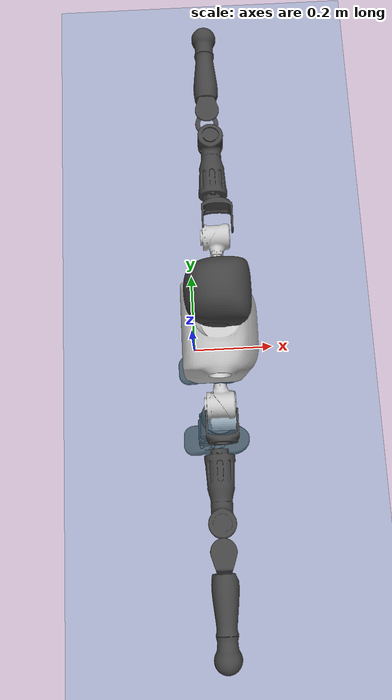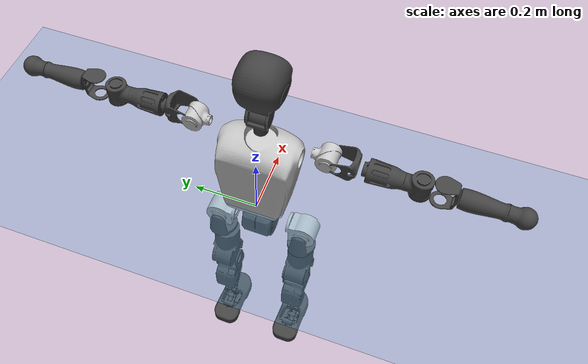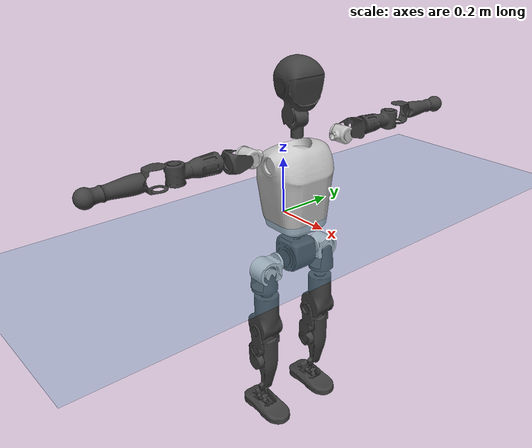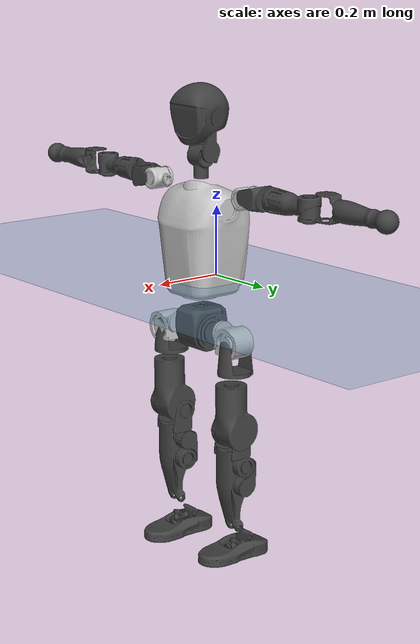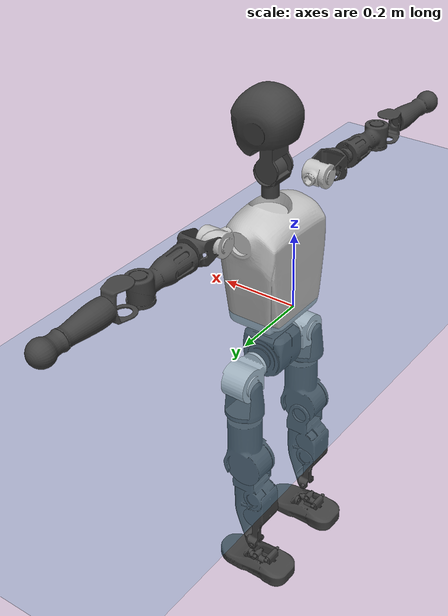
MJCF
<mujoco model="T1">
  <compiler angle="radian" assetdir="assets" balanceinertia="true" inertiafromgeom="false"/>

  <option timestep="0.005" density="1.2" viscosity="2e-05"/>

  <size nkey="1"/>

  <visual>
    <quality shadowsize="8192"/>
    <map shadowclip="0.5"/>
  </visual>

  <default>
    <default class="/">
      <joint armature="0.01" damping="0.01" frictionloss="0.1"/>
      <geom contype="0" conaffinity="0" group="1" solref="-1000 -80"/>
      <site size="0.01 0.005 0.005" group="5"/>
      <general forcelimited="true" biastype="affine" gainprm="25" biasprm="0 -25 -0.6"/>
      <default class="t1">
        <geom rgba="0.25 0.25 0.25 1"/>
        <default class="visual">
          <geom type="mesh" group="2"/>
        </default>
        <default class="collision">
          <geom group="3"/>
        </default>
        <default class="foot">
          <geom size="0.1115 0.05 0.015" type="box" condim="6" group="4" priority="1" solimp="0.015 1 0.015"/>
        </default>
        <default class="reward_collision_sphere">
          <geom group="5" rgba="1 0 0 1"/>
        </default>
      </default>
    </default>
  </default>

  <asset>
    <texture type="skybox" colorspace="auto" name="//unnamed_texture_0" builtin="gradient" rgb1="0.95 0.95 0.95" rgb2="0.95 0.95 0.95" width="100" height="600"/>
    <texture type="2d" colorspace="auto" name="texplane" builtin="checker" rgb1="0.345 0.575 0.748" rgb2="0.345 0.575 0.748" markrgb="1 1 1" width="512" height="512"/>
    <material name="MatPlane" class="/" texture="texplane" texuniform="true" texrepeat="2 2" specular="0.9"/>
    <mesh name="Trunk" class="/" file="Trunk.stl"/>
    <mesh name="H1" class="/" file="H1.stl"/>
    <mesh name="H2" class="/" file="H2.stl"/>
    <mesh name="AL1" class="/" file="AL1.stl"/>
    <mesh name="AL2" class="/" file="AL2.stl"/>
    <mesh name="AL3" class="/" file="AL3.stl"/>
    <mesh name="left_hand_link" class="/" file="left_hand_link.stl"/>
    <mesh name="AR1" class="/" file="AR1.stl"/>
    <mesh name="AR2" class="/" file="AR2.stl"/>
    <mesh name="AR3" class="/" file="AR3.stl"/>
    <mesh name="right_hand_link" class="/" file="right_hand_link.stl"/>
    <mesh name="Waist" class="/" file="Waist.stl"/>
    <mesh name="Hip_Pitch_Left" class="/" file="Hip_Pitch_Left.stl"/>
    <mesh name="Hip_Roll_Left" class="/" file="Hip_Roll_Left.stl"/>
    <mesh name="Hip_Yaw_Left" class="/" file="Hip_Yaw_Left.stl"/>
    <mesh name="Shank_Left" class="/" file="Shank_Left.stl"/>
    <mesh name="Ankle_Cross_Left" class="/" file="Ankle_Cross_Left.stl"/>
    <mesh name="left_foot_link" class="/" file="left_foot_link.stl"/>
    <mesh name="Hip_Pitch_Right" class="/" file="Hip_Pitch_Right.stl"/>
    <mesh name="Hip_Roll_Right" class="/" file="Hip_Roll_Right.stl"/>
    <mesh name="Hip_Yaw_Right" class="/" file="Hip_Yaw_Right.stl"/>
    <mesh name="Shank_Right" class="/" file="Shank_Right.stl"/>
    <mesh name="Ankle_Cross_Right" class="/" file="Ankle_Cross_Right.stl"/>
    <mesh name="right_foot_link" class="/" file="right_foot_link.stl"/>
  </asset>

  <worldbody>
    <geom name="floor" class="/" size="100 100 0.125" type="plane" group="0" material="MatPlane"/>
    <light name="toplight_shadow" class="/" pos="0 0 5" dir="0.0990148 0.0990148 -0.990148" type="directional" ambient="0.04 0.04 0.04" diffuse="0.55 0.55 0.55" specular="0.12 0.12 0.12"/>
    <light name="toplight_fill" class="/" pos="0 0 5" dir="0.0990148 0.0990148 -0.990148" type="directional" castshadow="false" ambient="0.04 0.04 0.04" diffuse="0.3 0.3 0.3" specular="0.08 0.08 0.08"/>
    <body name="trunk" childclass="t1" pos="0.00480243 0.00937906 -0.00621373" quat="0.999994 0.00178234 -0.000518895 -0.00280525">
      <inertial pos="0.0517638 0.003144 0.121628" quat="0.999924 0.00433022 -0.0103293 0.00517168" mass="20.8137" diaginertia="0.0691731 0.325471 0.134131"/>
      <joint name="//unnamed_joint_0" type="free" armature="0" damping="0" frictionloss="0"/>
      <geom name="//unnamed_geom_1" class="visual" rgba="0.76 0.76 0.76 1" mesh="Trunk"/>
      <geom name="//unnamed_geom_2" class="collision" size="0.0890753 0.118767 0.178151" pos="0.0576599 0 0.144712" type="box"/>
      <geom name="//unnamed_geom_3" class="reward_collision_sphere" size="0.136582" pos="0.0576599 0 0.120593"/>
      <geom name="//unnamed_geom_4" class="reward_collision_sphere" size="0.0178151" pos="0.0576599 0.118667 0"/>
      <geom name="//unnamed_geom_5" class="reward_collision_sphere" size="0.0178151" pos="0.0576599 -0.118667 0"/>
      <geom name="//unnamed_geom_6" class="reward_collision_sphere" size="0.0178151" pos="0.0576599 0.149381 0.217068"/>
      <geom name="//unnamed_geom_7" class="reward_collision_sphere" size="0.0178151" pos="0.0576599 -0.149381 0.217068"/>
      <site name="imu" pos="0.0365871 0.0542194 0.00419633" size="0.0118767"/>
      <camera name="track" pos="0 -2.79216 0" quat="0.707107 0.707107 0 0" mode="trackcom"/>
      <camera name="ego_camera" pos="0.117242 0 0.506491" quat="-0.5 -0.5 0.5 0.5"/>
      <body name="H1" pos="0.057459 -0.000199073 0.291705" quat="0.999995 -0.0018944 -0.00214264 0.00105736">
        <inertial pos="-0.00671746 -0.00215768 0.0623402" quat="0.724158 0.00633655 -0.0196268 0.689326" mass="0.720113" diaginertia="0.000189302 0.00103635 0.000403269"/>
        <joint name="AAHead_yaw" pos="0 0 0" axis="0.0339857 0.0425395 0.998517" range="-1.41988 1.5527" armature="0.00771215" damping="0" frictionloss="0.167116"/>
        <geom name="//unnamed_geom_8" class="visual" mesh="H1"/>
        <body name="H2" pos="-0.0102438 0.000704431 0.0741785" quat="1 5.67173e-05 -2.72032e-05 -2.73945e-05">
          <inertial pos="0.00667811 0.0137396 0.117535" quat="0.989205 0.0975365 -0.0737871 -0.0807173" mass="1.18118" diaginertia="0.00187062 0.0132328 0.00481064"/>
          <joint name="Head_pitch" pos="0 0 0" axis="-0.0449404 -0.998957 0.00813426" stiffness="0.0244821" range="-1.1996 0.235214" armature="0.0110089" damping="0.00647246" frictionloss="0.144645"/>
          <geom name="//unnamed_geom_9" class="visual" mesh="H2"/>
          <geom name="//unnamed_geom_10" class="collision" size="0.0950136" pos="0.00960999 0 0.132652"/>
          <geom name="//unnamed_geom_11" class="reward_collision_sphere" size="0.10689" pos="0.01922 0 0.120593"/>
        </body>
      </body>
      <body name="AL1" pos="0.062828 0.154689 0.263001" quat="0.999999 0.00133676 0.000797676 0.000594035">
        <inertial pos="-0.00139817 0.059459 0.0121324" quat="0.541357 0.456271 -0.488965 0.509571" mass="0.732686" diaginertia="0.000914603 0.00566843 0.00062757"/>
        <joint name="Left_Shoulder_Pitch" pos="0 0 0" axis="0.00583764 0.998656 -0.0515021" range="-3.30666 1.31803" armature="0.0135869" damping="0.00449976" frictionloss="0.113776"/>
        <geom name="//unnamed_geom_12" class="visual" rgba="0.76 0.76 0.76 1" mesh="AL1"/>
        <body name="AL2" pos="0.00494676 0.0744102 0.00980718" quat="0.999976 -0.00659062 0.0018678 -0.00126189">
          <inertial pos="0.00707084 0.0662867 0.000404898" quat="0.489999 0.51022 -0.487766 0.511527" mass="0.27588" diaginertia="0.000321245 0.00202298 0.000461715"/>
          <joint name="Left_Shoulder_Roll" pos="0 0 0" axis="-0.997666 -0.0682342 -0.00240865" stiffness="0.0607067" range="-1.79915 1.80587" armature="0.0149451" damping="0.0718894" frictionloss="0.0536621"/>
          <geom name="//unnamed_geom_13" class="visual" mesh="AL2"/>
          <body name="AL3" pos="-0.00735899 0.0714836 0.000333899" quat="0.999983 -0.00257651 0.00514667 0.000860663">
            <inertial pos="0.00102927 0.129092 0.00372768" quat="0.728316 0.685179 0.00389093 -0.00838387" mass="1.52493" diaginertia="0.0115078 0.0636527 0.00197399"/>
            <joint name="Left_Elbow_Pitch" pos="0 0 0" axis="0.0147055 -0.99889 0.0447508" stiffness="0.0472106" range="-2.53868 2.51775" armature="0.0045598" damping="0.064382" frictionloss="0.0665662"/>
            <geom name="//unnamed_geom_14" class="visual" mesh="AL3"/>
            <geom name="//unnamed_geom_15" class="collision" size="0.0356301 0.0890753" pos="0 0.0698041 0" quat="0.707105 0.707108 0 0" type="cylinder"/>
            <geom name="//unnamed_geom_16" class="reward_collision_sphere" size="0.0427561"/>
            <body name="left_hand_link" pos="-0.00550511 0.204285 0.0118637" quat="0.999992 -0.00115423 0.00326906 -0.00179251">
              <inertial pos="-0.000284567 0.154965 0.00991962" quat="0.709838 0.704362 -0.000970588 -0.00152825" mass="0.505199" diaginertia="0.00623763 0.0438207 0.000534187"/>
              <joint name="Left_Elbow_Yaw" pos="0 0 0" axis="0.0324419 0.013231 0.999386" range="-2.43218 0.0290128" armature="0.013509" damping="0.0178369" frictionloss="0.078815"/>
              <geom name="//unnamed_geom_17" class="visual" mesh="left_hand_link"/>
              <geom name="//unnamed_geom_18" class="collision" size="0.0356301 0.103921" pos="0 0.181491 0" quat="0.707105 0.707108 0 0" type="cylinder"/>
              <geom name="//unnamed_geom_19" class="reward_collision_sphere" size="0.0593835"/>
              <geom name="//unnamed_geom_20" class="reward_collision_sphere" size="0.0415685" pos="0 0.153569 0"/>
              <geom name="//unnamed_geom_21" class="reward_collision_sphere" size="0.0415685" pos="0 0.300158 0"/>
            </body>
          </body>
        </body>
      </body>
      <body name="AR1" pos="0.0556721 -0.152387 0.266497" quat="0.999997 0.00174789 -0.000215651 -0.00182983">
        <inertial pos="0.00102579 -0.0518141 -0.0113138" quat="0.505195 0.496548 -0.500473 0.497739" mass="0.885252" diaginertia="0.00121439 0.00674596 0.0006469"/>
        <joint name="Right_Shoulder_Pitch" pos="0 0 0" axis="0.00223977 -0.999996 -0.00173196" range="-1.16043 3.31846" armature="0.0158409" damping="0" frictionloss="0.106509"/>
        <geom name="//unnamed_geom_22" class="visual" rgba="0.76 0.76 0.76 1" mesh="AR1"/>
        <body name="AR2" pos="0.000458502 -0.0756187 0.000878422" quat="1 0.000520924 -0.000124458 0.000235402">
          <inertial pos="0.0058761 -0.0532312 0.0121027" quat="0.509264 0.476551 -0.498392 0.514932" mass="0.238263" diaginertia="0.000347372 0.00202335 0.000488744"/>
          <joint name="Right_Shoulder_Roll" pos="0 0 0" axis="-0.999839 -0.00910643 0.0154601" range="-1.6714 1.35653" armature="0.0127908" damping="0.0604969" frictionloss="0.125345"/>
          <geom name="//unnamed_geom_23" class="visual" mesh="AR2"/>
          <body name="AR3" pos="-0.00851921 -0.0835597 0.00730158" quat="1 9.54337e-06 2.52671e-06 2.4322e-07">
            <inertial pos="-0.0040955 -0.112805 0.00126643" quat="0.708331 0.705845 0.00316003 0.00635933" mass="1.63066" diaginertia="0.0098466 0.0578555 0.00138496"/>
            <joint name="Right_Elbow_Pitch" pos="0 0 0" axis="-0.0171004 0.999785 0.011753" stiffness="0.0361579" range="-2.29364 2.24669" armature="0.00499775" damping="0" frictionloss="0.185181"/>
            <geom name="//unnamed_geom_24" class="visual" mesh="AR3"/>
            <geom name="//unnamed_geom_25" class="collision" size="0.0356301 0.0890753" pos="0 -0.0698041 0" quat="0.707105 0.707108 0 0" type="cylinder"/>
            <geom name="//unnamed_geom_26" class="reward_collision_sphere" size="0.0427561"/>
            <body name="right_hand_link" pos="-1.89444e-05 -0.204846 0.00221573" quat="0.999994 0.00306101 -0.00081084 -0.00113291">
              <inertial pos="0.00283706 -0.153278 0.0136382" quat="0.683251 0.72818 -0.047688 0.0254567" mass="0.459792" diaginertia="0.00773756 0.0431487 0.000508742"/>
              <joint name="Right_Elbow_Yaw" pos="0 0 0" axis="0.0156818 -0.0286386 0.999467" stiffness="0.0531019" range="0.226953 2.19045" armature="0.0133532" damping="0.0197919" frictionloss="0.100727"/>
              <geom name="//unnamed_geom_27" class="visual" mesh="right_hand_link"/>
              <geom name="//unnamed_geom_28" class="collision" size="0.0356301 0.103921" pos="0 -0.181491 0" quat="0.707105 0.707108 0 0" type="cylinder"/>
              <geom name="//unnamed_geom_29" class="reward_collision_sphere" size="0.0593835"/>
              <geom name="//unnamed_geom_30" class="reward_collision_sphere" size="0.0415685" pos="0 -0.153569 0"/>
              <geom name="//unnamed_geom_31" class="reward_collision_sphere" size="0.0415685" pos="0 -0.300158 0"/>
            </body>
          </body>
        </body>
      </body>
      <body name="Waist" pos="0.0542775 -0.00424601 -0.140345" quat="0.999998 0.00163403 0.00102616 -0.00110762">
        <inertial pos="0.00140632 0.00103525 0.0028231" quat="0.984261 -0.00845169 -0.174544 -0.0263485" mass="4.74273" diaginertia="0.00494374 0.028273 0.011941"/>
        <joint name="Waist" pos="0 0 0" axis="-0.0308084 -0.0434671 0.99858" stiffness="0.0679182" range="-1.55319 1.56354" armature="0.0093546" damping="0" frictionloss="0.178228"/>
        <geom name="//unnamed_geom_32" class="visual" mesh="Waist"/>
        <body name="Hip_Pitch_Left" pos="-0.00719875 0.137176 0.00433869" quat="0.999997 0.00181476 -0.00111019 -0.000786439">
          <inertial pos="-0.0115009 -0.0157872 -0.0111307" quat="0.976547 0.202425 0.0673917 0.0289522" mass="1.51958" diaginertia="0.00146824 0.00775802 0.00297176"/>
          <joint name="Left_Hip_Pitch" pos="0 0 0" axis="-0.0269033 0.999633 0.00331546" range="-1.83975 1.348" armature="0.0119263" damping="0.0543811" frictionloss="0.127504"/>
          <geom name="//unnamed_geom_33" class="visual" rgba="0.76 0.76 0.76 1" mesh="Hip_Pitch_Left"/>
          <body name="Hip_Roll_Left" pos="-0.00267317 -0.00217418 -0.0350483" quat="0.999999 -0.000955179 0.00125396 -0.000225695">
            <inertial pos="0.00876341 -0.00954429 -0.0658468" quat="0.685201 0.00207249 -0.0330846 0.727599" mass="0.72412" diaginertia="0.00141367 0.0105191 0.00154326"/>
            <joint name="Left_Hip_Roll" pos="0 0 0" axis="-0.999697 0.0182567 -0.016508" stiffness="0.00357278" range="-1.59649 0.0951539" armature="0.0124203" damping="0.00254249" frictionloss="0.167599"/>
            <geom name="//unnamed_geom_34" class="visual" mesh="Hip_Roll_Left"/>
            <geom name="//unnamed_geom_35" class="reward_collision_sphere" size="0.0653219"/>
            <body name="Hip_Yaw_Left" pos="0.00459713 -0.00882992 -0.107427" quat="0.999999 -0.000325424 0.000834998 0.000957538">
              <inertial pos="-0.00650656 -0.001014 -0.106882" quat="0.667925 -0.00231047 -0.06513 0.741369" mass="4.34461" diaginertia="0.0223593 0.141473 0.00746377"/>
              <joint name="Left_Hip_Yaw" pos="0 0 0" axis="-0.0467823 -0.0322917 -0.998383" stiffness="0.00583355" range="-1.12631 1.18469" armature="0.0120302" damping="0" frictionloss="0.125941"/>
              <geom name="//unnamed_geom_36" class="visual" mesh="Hip_Yaw_Left"/>
              <geom name="//unnamed_geom_37" class="collision" size="0.0593835 0.0950136" type="cylinder"/>
              <body name="Shank_Left" pos="-0.0224029 -0.0108027 -0.151214" quat="1 -0.000232372 -0.000335143 -0.000173923">
                <inertial pos="-0.00769019 0.0128804 -0.150954" quat="0.99783 0.00180106 -0.0223441 0.061913" mass="2.88193" diaginertia="0.0236274 0.182706 0.00395025"/>
                <joint name="Left_Knee_Pitch" pos="0 0 0" axis="-0.0250012 0.999685 0.00219065" range="-0.123981 2.34857" armature="0.00958074" damping="0" frictionloss="0.0361004"/>
                <geom name="//unnamed_geom_38" class="visual" mesh="Shank_Left"/>
                <geom name="//unnamed_geom_39" class="collision" size="0.0593835 0.0890753" pos="0 0 -0.144712" type="cylinder"/>
                <geom name="//unnamed_geom_40" class="reward_collision_sphere" size="0.0771986"/>
                <body name="Ankle_Cross_Left" pos="-0.00368773 -0.00190548 -0.330247" quat="1 -0.000578763 -3.92429e-05 -0.000383088">
                  <inertial pos="-0.00382982 -4.12004e-05 -0.0163679" quat="0.437857 0.548762 0.5551 0.446101" mass="0.157363" diaginertia="2.46285e-05 0.000184595 3.41153e-05"/>
                  <joint name="Left_Ankle_Pitch" pos="0 0 0" axis="0.0543504 0.997966 0.0333156" stiffness="0.0604434" range="-0.787366 0.399356" armature="0.0115296" damping="0.000604053" frictionloss="0.151973"/>
                  <geom name="//unnamed_geom_41" class="visual" mesh="Ankle_Cross_Left"/>
                  <body name="left_foot_link" pos="-0.00115066 -0.00625385 -0.0144873" quat="0.99998 0.000755422 -0.00605023 -0.00181113">
                    <inertial pos="-0.0118271 0.00155755 -0.00632497" quat="0.0417986 0.602039 0.00324352 0.797366" mass="1.06873" diaginertia="0.00209641 0.011825 0.00577812"/>
                    <joint name="Left_Ankle_Roll" pos="0 0 0" axis="-0.999969 -0.00751086 0.00249484" range="-0.486959 0.567638" armature="0.0121938" damping="0.0478523" frictionloss="0.0931155"/>
                    <geom name="//unnamed_geom_42" class="visual" mesh="left_foot_link"/>
                    <geom name="left_foot" class="foot" size="0.0893984 0.0693228 0.0270266" pos="0.00960999 0 -0.018089"/>
                    <geom name="//unnamed_geom_44" class="reward_collision_sphere" size="0.0617589" pos="0.00960999 0 -0.018089"/>
                    <geom name="//unnamed_geom_45" class="reward_collision_sphere" size="0.0356301" pos="0.0912949 -0.0321099 -0.018089"/>
                    <geom name="//unnamed_geom_46" class="reward_collision_sphere" size="0.0356301" pos="-0.0672699 -0.0321099 -0.018089"/>
                    <site name="left_foot" class="foot" pos="0.00960999 0 -0.018089" size="0.0118767"/>
                  </body>
                </body>
              </body>
            </body>
          </body>
        </body>
        <body name="Hip_Pitch_Right" pos="0.00939218 -0.147283 0.0025677" quat="0.999992 -0.00337972 0.00199608 8.26885e-05">
          <inertial pos="0.0072385 0.013851 -0.0313469" quat="0.97317 -0.229677 0.0130477 -0.00421731" mass="1.62013" diaginertia="0.00132832 0.00689827 0.00293763"/>
          <joint name="Right_Hip_Pitch" pos="0 0 0" axis="-0.00672507 -0.999966 0.00477" range="-1.57489 1.78407" armature="0.0116841" damping="0.043701" frictionloss="0.0689906"/>
          <geom name="//unnamed_geom_47" class="visual" rgba="0.76 0.76 0.76 1" mesh="Hip_Pitch_Right"/>
          <body name="Hip_Roll_Right" pos="-0.0102337 0.00341136 -0.0189712" quat="1 -0.000832711 0.000182475 -0.000162815">
            <inertial pos="0.0116746 0.00620926 -0.0556375" quat="0.720463 -0.0283338 -0.0105517 0.692834" mass="0.555183" diaginertia="0.00141056 0.00800657 0.0013759"/>
            <joint name="Right_Hip_Roll" pos="0 0 0" axis="-0.999856 -0.00583889 0.0159465" range="-0.0632439 1.59684" armature="0.00790333" damping="0" frictionloss="0.154914"/>
            <geom name="//unnamed_geom_48" class="visual" mesh="Hip_Roll_Right"/>
            <geom name="//unnamed_geom_49" class="reward_collision_sphere" size="0.0653219"/>
            <body name="Hip_Yaw_Right" pos="0.00709012 0.00148169 -0.0994364" quat="1 -5.08125e-05 -0.000351335 0.000231396">
              <inertial pos="-0.00813596 0.0104898 -0.119786" quat="0.710351 -0.0377907 -0.0344342 0.701988" mass="3.05213" diaginertia="0.0201995 0.102252 0.00639607"/>
              <joint name="Right_Hip_Yaw" pos="0 0 0" axis="-0.0114772 0.00225673 -0.999932" range="-1.00275 1.01715" armature="0.019386" damping="0.034169" frictionloss="0.128799"/>
              <geom name="//unnamed_geom_50" class="visual" mesh="Hip_Yaw_Right"/>
              <geom name="//unnamed_geom_51" class="collision" size="0.0593835 0.0950136" type="cylinder"/>
              <body name="Shank_Right" pos="-0.0249589 0.00285853 -0.157216" quat="1 -9.22006e-05 2.52956e-05 0.000207134">
                <inertial pos="-0.018385 -0.0139952 -0.151907" quat="0.998161 -0.0400777 -0.0128883 -0.0436119" mass="2.52724" diaginertia="0.020075 0.164435 0.0045665"/>
                <joint name="Right_Knee_Pitch" pos="0 0 0" axis="0.0126206 -0.998265 -0.057507" stiffness="0.0150133" range="-2.34068 0.00657836" armature="0.0103265" damping="0" frictionloss="0.085414"/>
                <geom name="//unnamed_geom_52" class="visual" mesh="Shank_Right"/>
                <geom name="//unnamed_geom_53" class="collision" size="0.0593835 0.0890753" pos="0 0 -0.144712" type="cylinder"/>
                <geom name="//unnamed_geom_54" class="reward_collision_sphere" size="0.0771986"/>
                <body name="Ankle_Cross_Right" pos="-0.00645403 -0.00346761 -0.336374" quat="0.999999 -0.000783423 0.00130179 -0.00010372">
                  <inertial pos="-0.00778089 -0.00658233 -0.0111461" quat="0.431183 0.570853 0.554967 0.424523" mass="0.136592" diaginertia="2.13114e-05 0.000139172 3.14986e-05"/>
                  <joint name="Right_Ankle_Pitch" pos="0 0 0" axis="0.0561383 -0.997596 -0.0406308" stiffness="0.0087826" range="-0.271844 0.88124" armature="0.01027" damping="0" frictionloss="0.0982321"/>
                  <geom name="//unnamed_geom_55" class="visual" mesh="Ankle_Cross_Right"/>
                  <body name="right_foot_link" pos="0.00407143 0.00960604 -0.023582" quat="1 -0.000213462 -7.93448e-05 -0.000284638">
                    <inertial pos="-0.0127305 -0.00131563 -0.0184698" quat="-0.00312126 0.596578 0.0327343 0.801881" mass="1.15214" diaginertia="0.00184518 0.0126362 0.00600626"/>
                    <joint name="Right_Ankle_Roll" pos="0 0 0" axis="-0.998847 -0.0473506 0.00789623" range="-0.435633 0.52699" armature="0.00913693" damping="0" frictionloss="0.187832"/>
                    <geom name="//unnamed_geom_56" class="visual" mesh="right_foot_link"/>
                    <geom name="right_foot" class="foot" size="0.0918916 0.0651667 0.0226162" pos="0.00960999 0 -0.018089"/>
                    <geom name="//unnamed_geom_58" class="reward_collision_sphere" size="0.0475068"/>
                    <geom name="//unnamed_geom_59" class="reward_collision_sphere" size="0.0356301" pos="0.00960999 0 -0.018089"/>
                    <geom name="//unnamed_geom_60" class="reward_collision_sphere" size="0.0356301" pos="0.0912949 0.0321099 -0.018089"/>
                    <geom name="//unnamed_geom_61" class="reward_collision_sphere" size="0.0356301" pos="-0.0672699 0.0321099 -0.018089"/>
                    <site name="right_foot" class="foot" pos="0.00960999 0 -0.018089" size="0.0118767"/>
                  </body>
                </body>
              </body>
            </body>
          </body>
        </body>
      </body>
    </body>
  </worldbody>

  <contact>
    <pair class="/" geom1="floor" geom2="left_foot" name="//unnamed_contact_0"/>
    <pair class="/" geom1="floor" geom2="right_foot" name="//unnamed_contact_1"/>
  </contact>

  <actuator>
    <general name="AAHead_yaw" class="/" joint="AAHead_yaw" forcerange="-11.6563 11.6563" gainprm="31.2941" biasprm="0 -31.2941 -0.732417"/>
    <general name="Head_pitch" class="/" joint="Head_pitch" forcerange="-6.98172 6.98172" gainprm="31.2941" biasprm="0 -31.2941 -0.732417"/>
    <general name="Left_Shoulder_Pitch" class="/" joint="Left_Shoulder_Pitch" forcerange="-22.052 22.052" gainprm="31.2941" biasprm="0 -31.2941 -0.732417"/>
    <general name="Left_Shoulder_Roll" class="/" joint="Left_Shoulder_Roll" forcerange="-17.3039 17.3039" gainprm="31.2941" biasprm="0 -31.2941 -0.732417"/>
    <general name="Left_Elbow_Pitch" class="/" joint="Left_Elbow_Pitch" forcerange="-14.1042 14.1042" gainprm="31.2941" biasprm="0 -31.2941 -0.732417"/>
    <general name="Left_Elbow_Yaw" class="/" joint="Left_Elbow_Yaw" forcerange="-11.1713 11.1713" gainprm="31.2941" biasprm="0 -31.2941 -0.732417"/>
    <general name="Right_Shoulder_Pitch" class="/" joint="Right_Shoulder_Pitch" forcerange="-22.4073 22.4073" gainprm="31.2941" biasprm="0 -31.2941 -0.732417"/>
    <general name="Right_Shoulder_Roll" class="/" joint="Right_Shoulder_Roll" forcerange="-14.0439 14.0439" gainprm="31.2941" biasprm="0 -31.2941 -0.732417"/>
    <general name="Right_Elbow_Pitch" class="/" joint="Right_Elbow_Pitch" forcerange="-15.7318 15.7318" gainprm="31.2941" biasprm="0 -31.2941 -0.732417"/>
    <general name="Right_Elbow_Yaw" class="/" joint="Right_Elbow_Yaw" forcerange="-28.192 28.192" gainprm="31.2941" biasprm="0 -31.2941 -0.732417"/>
    <general name="Waist" class="/" joint="Waist" forcerange="-35.8604 35.8604" gainprm="31.2941" biasprm="0 -31.2941 -0.732417"/>
    <general name="Left_Hip_Pitch" class="/" joint="Left_Hip_Pitch" forcerange="-39.9288 39.9288" gainprm="31.2941" biasprm="0 -31.2941 -0.732417"/>
    <general name="Left_Hip_Roll" class="/" joint="Left_Hip_Roll" forcerange="-37.0976 37.0976" gainprm="31.2941" biasprm="0 -31.2941 -0.732417"/>
    <general name="Left_Hip_Yaw" class="/" joint="Left_Hip_Yaw" forcerange="-30.9294 30.9294" gainprm="31.2941" biasprm="0 -31.2941 -0.732417"/>
    <general name="Left_Knee_Pitch" class="/" joint="Left_Knee_Pitch" forcerange="-70.7143 70.7143" gainprm="31.2941" biasprm="0 -31.2941 -0.732417"/>
    <general name="Left_Ankle_Pitch" class="/" joint="Left_Ankle_Pitch" forcerange="-21.2116 21.2116" gainprm="31.2941" biasprm="0 -31.2941 -0.732417"/>
    <general name="Left_Ankle_Roll" class="/" joint="Left_Ankle_Roll" forcerange="-18.1288 18.1288" gainprm="31.2941" biasprm="0 -31.2941 -0.732417"/>
    <general name="Right_Hip_Pitch" class="/" joint="Right_Hip_Pitch" forcerange="-52.7405 52.7405" gainprm="31.2941" biasprm="0 -31.2941 -0.732417"/>
    <general name="Right_Hip_Roll" class="/" joint="Right_Hip_Roll" forcerange="-35.5815 35.5815" gainprm="31.2941" biasprm="0 -31.2941 -0.732417"/>
    <general name="Right_Hip_Yaw" class="/" joint="Right_Hip_Yaw" forcerange="-37.2722 37.2722" gainprm="31.2941" biasprm="0 -31.2941 -0.732417"/>
    <general name="Right_Knee_Pitch" class="/" joint="Right_Knee_Pitch" forcerange="-86.5762 86.5762" gainprm="31.2941" biasprm="0 -31.2941 -0.732417"/>
    <general name="Right_Ankle_Pitch" class="/" joint="Right_Ankle_Pitch" forcerange="-31.7833 31.7833" gainprm="31.2941" biasprm="0 -31.2941 -0.732417"/>
    <general name="Right_Ankle_Roll" class="/" joint="Right_Ankle_Roll" forcerange="-13.1925 13.1925" gainprm="31.2941" biasprm="0 -31.2941 -0.732417"/>
  </actuator>

  <sensor>
    <gyro site="imu" name="imu_angular_velocity"/>
    <velocimeter site="imu" name="imu_linear_velocity"/>
    <framelinvel objtype="site" objname="left_foot" name="left_foot_global_linear_velocity"/>
    <framelinvel objtype="site" objname="right_foot" name="right_foot_global_linear_velocity"/>
  </sensor>

  <keyframe>
    <key name="home" qpos="0 0 0.6385 1 0 0 0 0 0 0 1.4 0 -0.4 0 -1.4 0 0.4 0 -0.4 0 0 0.8 -0.4 0 0.4 0 0 -0.8 0.4 0"/>
  </keyframe>
</mujoco>
